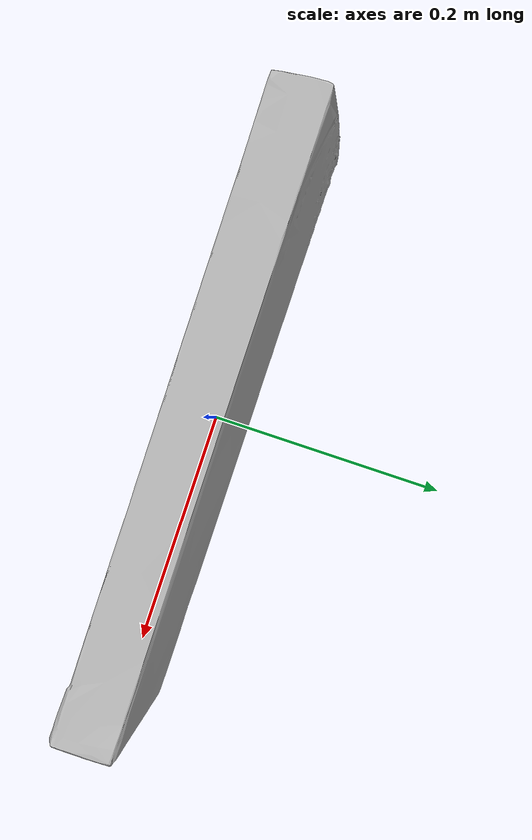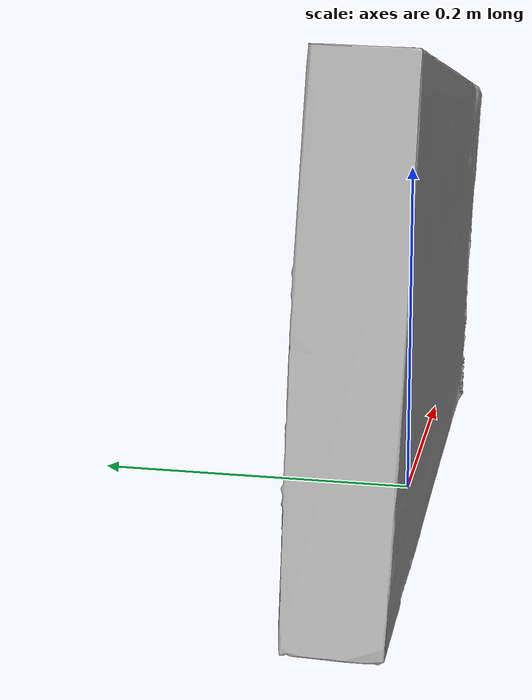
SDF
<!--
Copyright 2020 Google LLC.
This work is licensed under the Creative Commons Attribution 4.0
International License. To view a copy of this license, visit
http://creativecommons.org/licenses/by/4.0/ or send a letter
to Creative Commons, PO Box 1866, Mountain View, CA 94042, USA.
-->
<?xml version="1.0" ?>
<sdf version="1.6">
  <model name="Clue_Board_Game_Classic_Edition">
    <link name="link_0">
      <visual name="visual">
        <geometry>
          <mesh>
            <uri>meshes/model.obj</uri>
          </mesh>
        </geometry>
      </visual>
      <collision name="collision_0">
        <geometry>
          <mesh>
            <uri>meshes/model.obj</uri>
          </mesh>
        </geometry>
      </collision>
    </link>
  </model>
</sdf>
